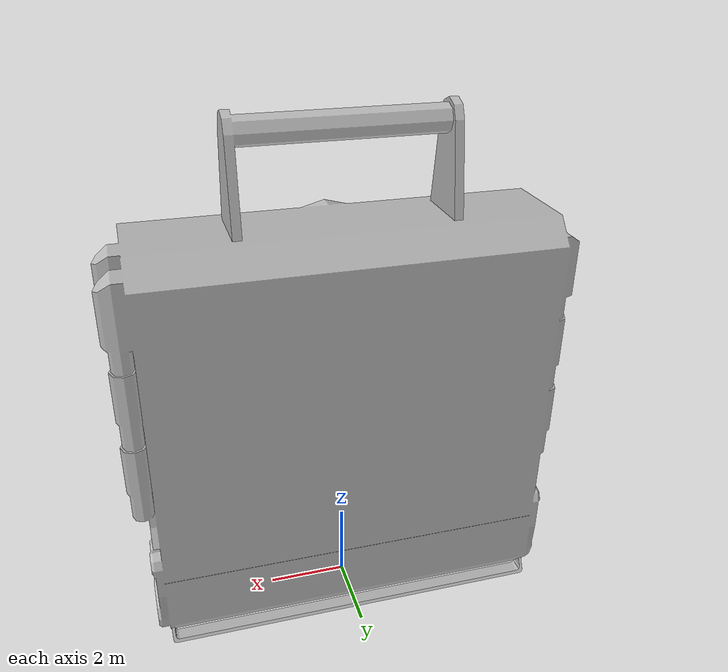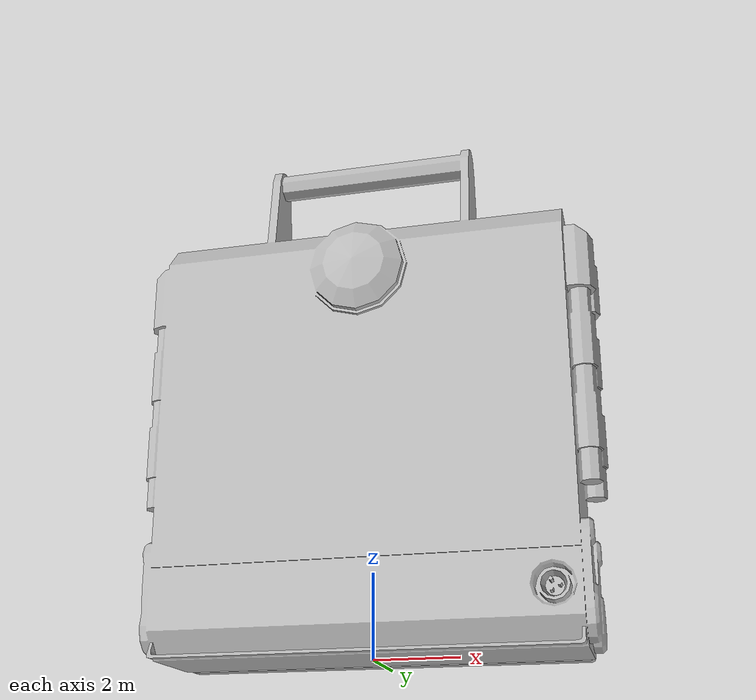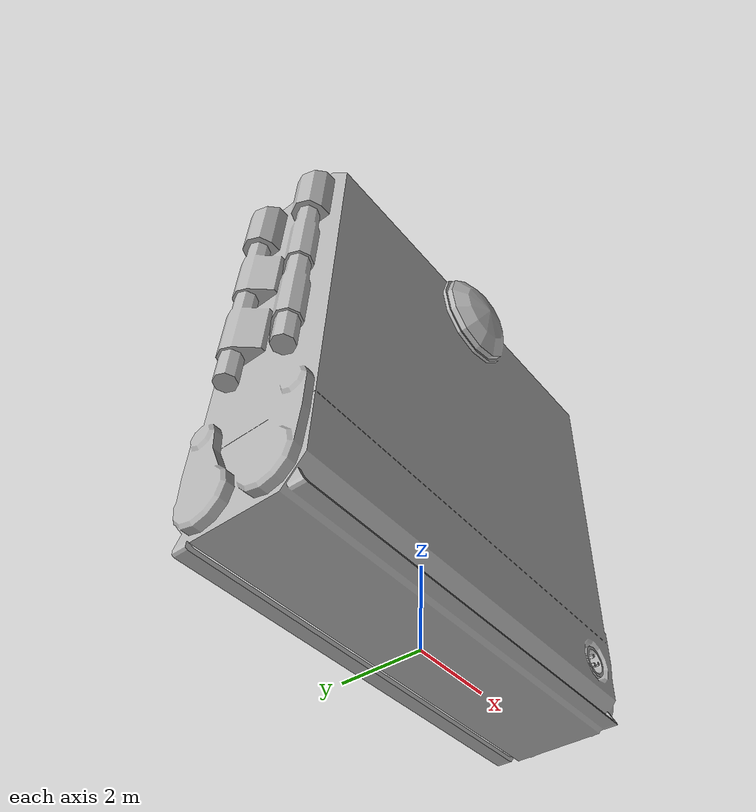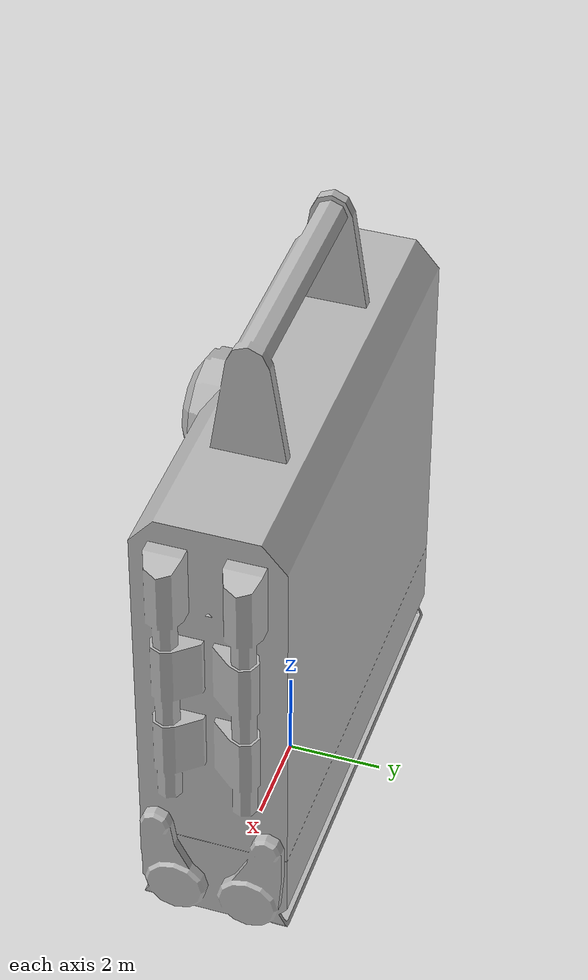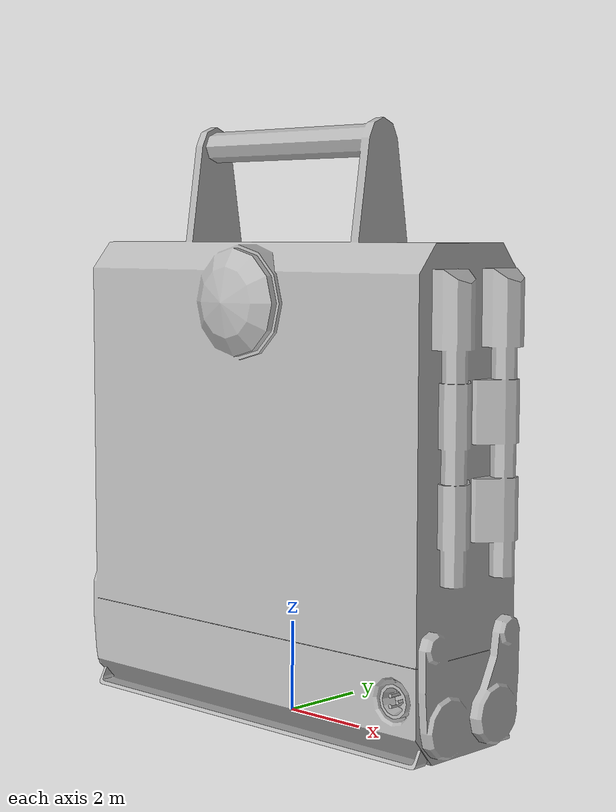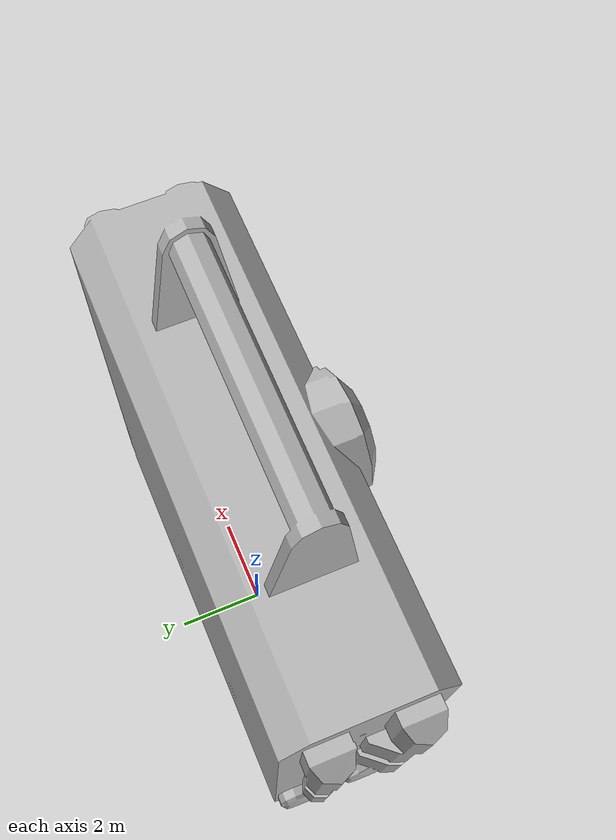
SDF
<?xml version="1.0" ?>
<sdf version="1.6">
  <model name="solar_panel">
    <link name="Reference">
      <visual name="visual">
        <geometry>
          <mesh>
            <uri>model://solar_panel/meshes/solar_panel.obj</uri>
            <scale>0.0254 0.0254 0.0254</scale>
          </mesh>
        </geometry>
      </visual>
    </link>
  </model>
</sdf>
